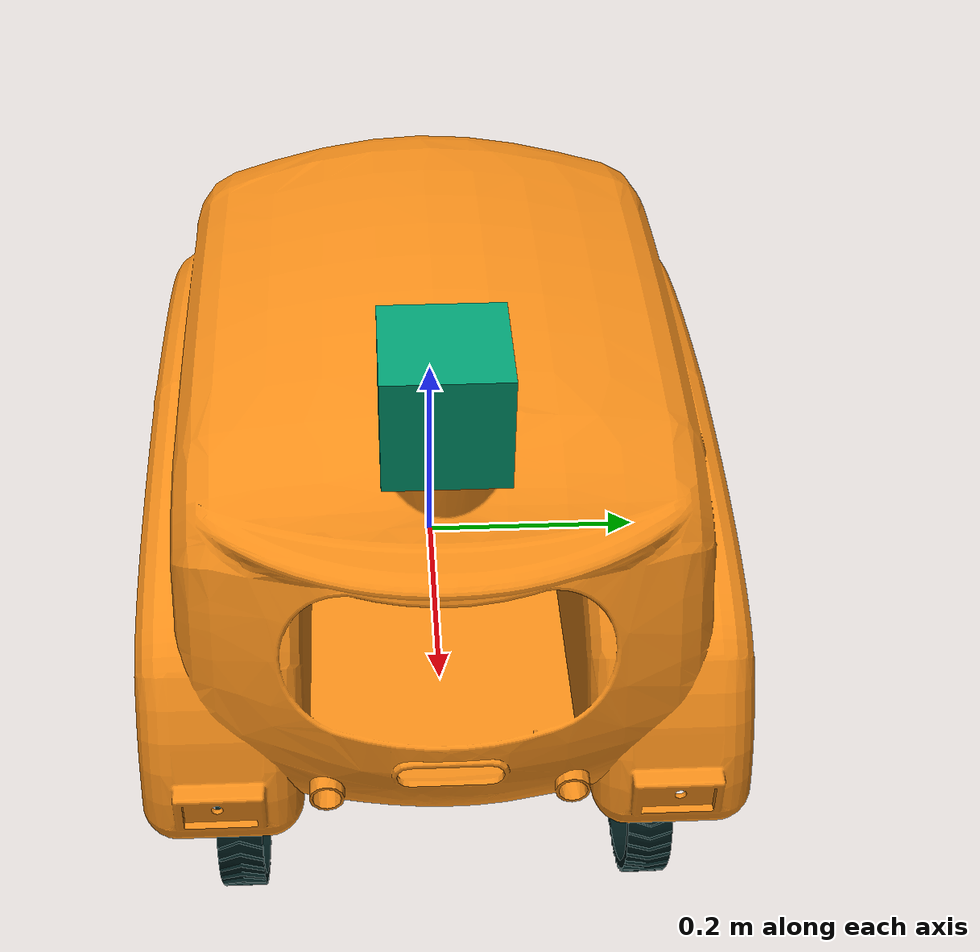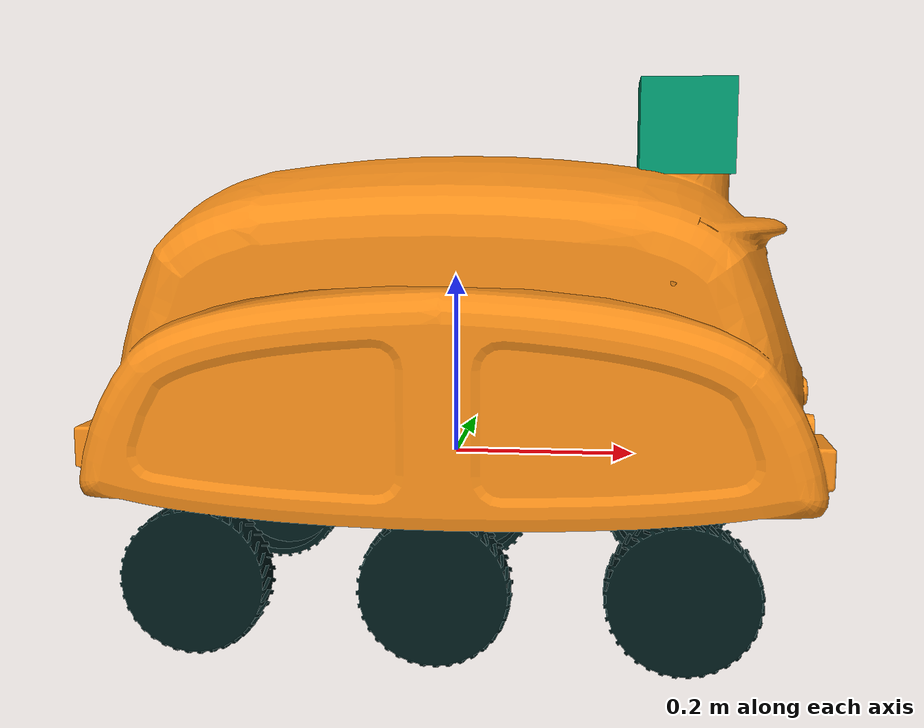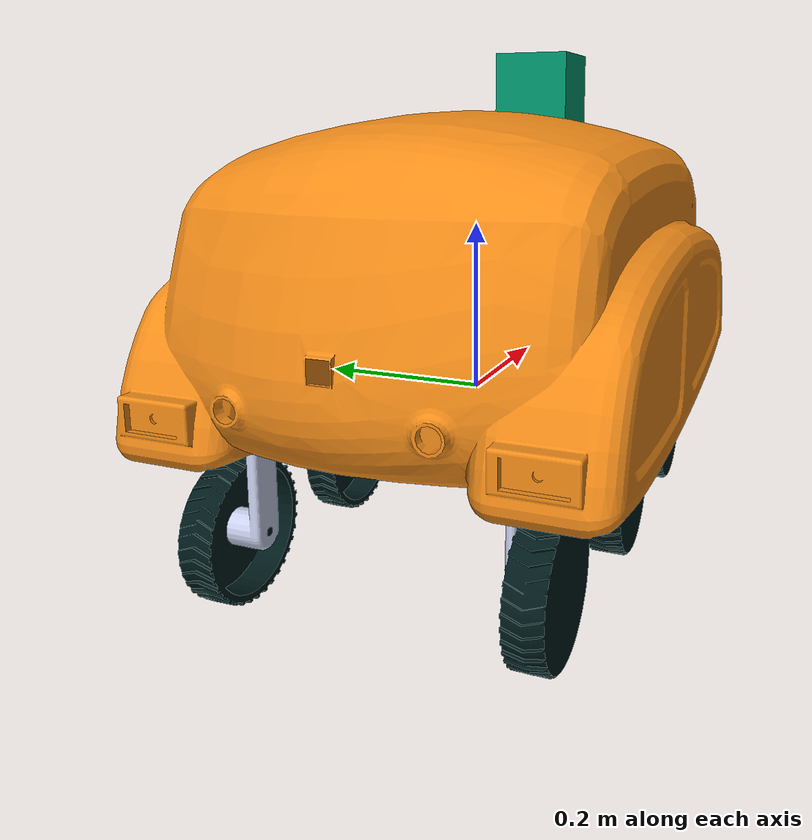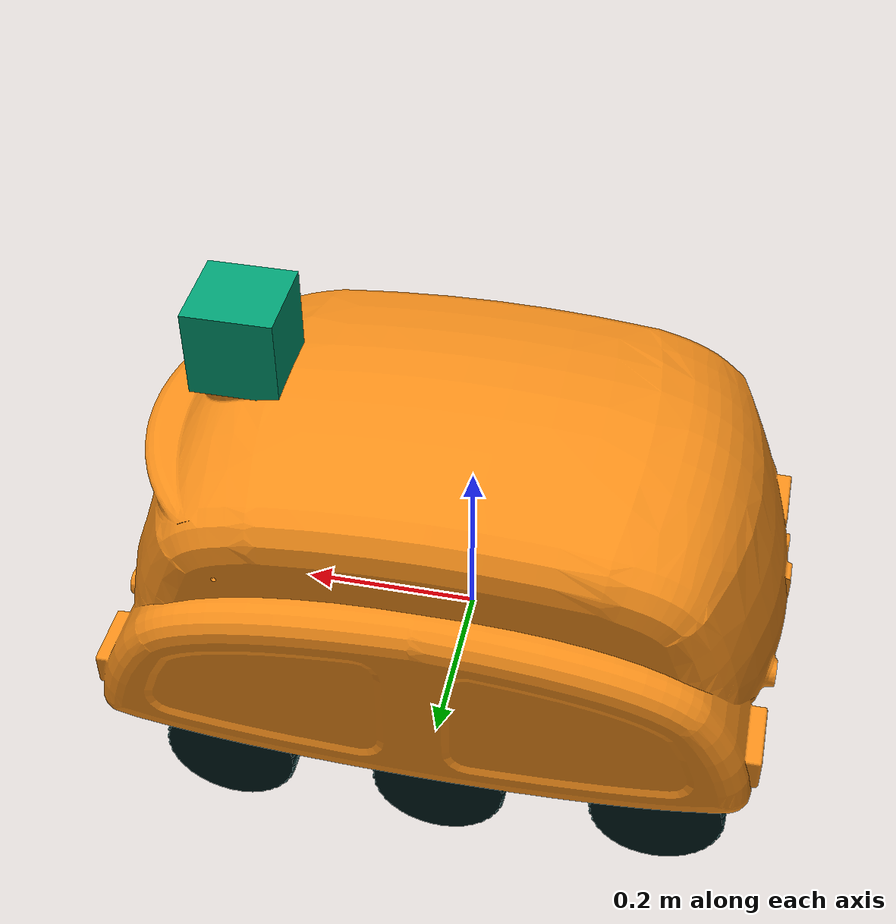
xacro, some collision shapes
<?xml version="1.0"?>

<robot name="beetlebot" xmlns:xacro="http://www.ros.org/wiki/xacro">

  <property name="PI" value="3.1415926535897931"/>

  <include filename="$(find beetlebot_description)/urdf/beetlebot.gazebo" />
  <include filename="$(find beetlebot_description)/urdf/materials.xacro" />
  <include filename="$(find beetlebot_description)/urdf/robot.xacro" />
  <include filename="$(find beetlebot_description)/urdf/sensor.xacro" />
  <link name="footprint" />

  <joint name="base_joint" type="fixed">
    <parent link="footprint"/>
    <child link="chassis"/>
  </joint>

  <link name="chassis">
    <collision>
      <origin xyz="0 0 0" rpy="0 0 0"/>
      <geometry>
        <mesh filename="$(find beetlebot_description)/meshes/base_link.dae" scale= "1 1 1"/>
      </geometry>
    </collision>

    <visual>
      <origin xyz="0 0 0" rpy="0 0 0"/>
      <geometry>
        <mesh filename="$(find beetlebot_description)/meshes/base_link.dae" scale= "1 1 1"/>
      </geometry>
    </visual>

    <inertial>
      <origin
        xyz="0 0 0"
        rpy="0 0 0" />
      <mass
        value="15.9977" />
      <inertia
        ixx="0.41015032534565"
        ixy="0"
        ixz="0"
        iyy="0.864297044074108"
        iyz="0"
        izz="1.03198412493106"  />
    </inertial>
  </link>

  <!-- Pivot_Link -->
  <!-- Bogie_left_Link -->
  <bogie ch="Bogie_left" pr="chassis" num="1"/>
  <bogie ch="Bogie_right" pr="chassis" num="-1"/>
  <!-- Frame_Link -->
  <sterring st="Frame_rear_left"  pr="chassis" ori="1" xyz_ori_joint="-0.2512 0.1746 0.04115" rpy_ori_joint="0 0 3.1416"/>
  <sterring st="Frame_front_left" pr="Bogie_left_Link" ori="1" xyz_ori_joint="0.0230242813783894 -0.161600997729002 -0.00600000000035122" rpy_ori_joint="1.57079632679489 0 -0.965625096203858"/>
  <sterring st="Frame_front_right" pr="Bogie_right_Link" ori="-1" xyz_ori_joint="0.0230242813783506 0.161600997729037 -0.00600000000014898" rpy_ori_joint="-1.57079632679501 0 0.965625096203942"/>
  <sterring st="Frame_rear_right" pr="chassis" ori="1" xyz_ori_joint="-0.251199999999987 -0.174600000000377 0.0411497179068749" rpy_ori_joint="0 0 -3.14159265358979"/>
  <!-- Wheel -->
  <wheel ch="Wheel_mid_left" pr="Bogie_left" ori="1" xyz_ori_joint="0.00282985115710119 0.125984094005667 0.00954399441673065" rpy_ori_joint="0 0 1.54833813158444"/>
  <wheel ch="Wheel_front_left" pr="Frame_front_left" ori="1" xyz_ori_joint="0 0.0165439944167309 -0.145999999999945" rpy_ori_joint="1.570796326795 0 3.14159265358969"/>
  <wheel ch="Wheel_rear_left" pr="Frame_rear_left" ori="1" xyz_ori_joint="0 -0.0165439944167308 -0.146" rpy_ori_joint="1.570796326795 0 0"/>
  <wheel ch="Wheel_mid_right" pr="Bogie_right" ori="1" xyz_ori_joint="0.00282985115709367 -0.125984094005641 0.00954399441663158" rpy_ori_joint="0 0 -1.5483381315845"/>
  <wheel ch="Wheel_front_right" pr="Frame_front_right" ori="1" xyz_ori_joint="0 -0.0165439944167298 -0.145999999999915" rpy_ori_joint="-1.5707963267949 0 3.14159265358969"/>
  <wheel ch="Wheel_rear_right" pr="Frame_rear_right" ori="1" xyz_ori_joint="0 0.0165439944167314 -0.145999999999968" rpy_ori_joint="-1.57079632679489 0 0"/>

  <!-- camera front -->
  <sensor_camera name="camera_front" ori_xyz="0.383 0 0.080" ori_rpy="0 0 0" />
  <sensor_camera name="camera_rear" ori_xyz="-0.361 0 0.113" ori_rpy="0 0 3.14" />
  <sensor_camera name="camera_left" ori_xyz="0.010 0.220 0.228" ori_rpy="0 0 1.57" />
  <sensor_camera name="camera_right" ori_xyz="0.010 -0.220 0.228" ori_rpy="0 0 -1.57" />

  <Hokuyo_laser/>
  <IMU/>
</robot>

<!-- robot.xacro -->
<robot>

<!-- ****************************************sterring******************************************** -->
    <macro name="sterring" params="st pr ori xyz_ori_joint rpy_ori_joint" >

      <link
        name="${st}_Link">
        <inertial>
          <origin
            xyz="${ori*-0.000100729773299224} ${ori*-0.022707717448498} -0.0946007357290982"
            rpy="0 0 0" />
          <mass
            value="1.110802029012366" />
          <inertia
            ixx="0.00032454182493778"
            ixy="0"
            ixz="0"
            iyy="0.000313625372879202"
            iyz="0"
            izz="3.60621586312286E-05" />
        </inertial>
        <visual>
          <origin
            xyz="0 0 0"
            rpy="0 0 0" />
          <geometry>
            <mesh
              filename="$(find beetlebot_description)/meshes/${st}_Link.dae" />
          </geometry>
          <material
            name="">
            <color
              rgba="0.792156862745098 0.819607843137255 0.933333333333333 1" />
          </material>
        </visual>
        <collision>
          <origin
            xyz="0 0 0"
            rpy="0 0 0" />
          <geometry>
            <mesh
              filename="$(find beetlebot_description)/meshes/${st}_Link.dae" />
          </geometry>
        </collision>
      </link>

      <joint
        name="${st}_joint" type="revolute">
        <origin
          xyz="${xyz_ori_joint}"
          rpy="${rpy_ori_joint}" />
        <parent link="${pr}" />
        <child link="${st}_Link" />
        <axis xyz="0 0 1" />
        <limit lower="-1.0472" upper="1.0472" effort="1.0472" velocity="10.0"/>

      </joint>

      <transmission name="${st}_trans">
        <type>transmission_interface/SimpleTransmission</type>
        <joint name="${st}_joint">
          <hardwareInterface>hardware_interface/EffortJointInterface</hardwareInterface>
        </joint>
        <actuator name="${st}_Motor">
          <hardwareInterface>hardware_interface/EffortJointInterface</hardwareInterface>
          <mechanicalReduction>1</mechanicalReduction>
        </actuator>
      </transmission>

      <gazebo reference="${st}_Link">
        <mu1>0.3</mu1>
        <mu2>0.3</mu2>
        <self_collide>1</self_collide>
      </gazebo>
    </macro>

<!-- ****************************************bogie*********************************************** -->
    <macro name="bogie" params="ch pr num">
      <link
        name="${ch}_Link">
        <inertial>
          <origin
            xyz="-0.000163032997340468 ${num*-0.0332177038859611} -0.0358157719860211"
            rpy="0 0 0" />
          <mass
            value="0.298477821339867" />
          <inertia
            ixx="0.00305008410077296"
            ixy="0"
            ixz="0"
            iyy="0.000246965375315985"
            iyz="0"
            izz="0.00318546306770007" />
        </inertial>
        <visual>
          <origin
            xyz="0 0 0"
            rpy="0 0 0" />
          <geometry>
            <mesh
              filename="$(find beetlebot_description)/meshes/${ch}_Link.dae" />
          </geometry>
          <material
            name="">
            <color
              rgba="0.792156862745098 0.819607843137255 0.933333333333333 1" />
          </material>
        </visual>
        <collision>
          <origin
            xyz="0 0 0"
            rpy="0 0 0" />
          <geometry>
            <mesh
              filename="$(find beetlebot_description)/meshes/${ch}_Link.dae" />
          </geometry>
        </collision>
      </link>

      <joint
        name="${ch}_joint"
        type="revolute">
        <origin
          xyz="0.1019 ${num*0.1916} -0.030305"
          rpy="${num*-1.5708} 0.96563 0" />
        <parent
          link="chassis" />
        <child
          link="${ch}_Link" />
        <axis
          xyz="0 0 1" />
        <safety_controller
          k_velocity="0" />
        <joint_properties damping="0.0" friction="0.0"/>
        <limit lower="-0.4" upper="0.4" effort="10000.0" velocity="10.0"/>
      </joint>

      <transmission name="${ch}_trans">
        <type>transmission_interface/SimpleTransmission</type>
        <joint name="${ch}_joint">
          <hardwareInterface>hardware_interface/EffortJointInterface</hardwareInterface>
        </joint>
        <actuator name="${ch}_Motor">
          <hardwareInterface>hardware_interface/EffortJointInterface</hardwareInterface>
          <mechanicalReduction>1</mechanicalReduction>
        </actuator>
      </transmission>

      <gazebo reference="${ch}_Link">
        <mu1>0.3</mu1>
        <mu2>0.3</mu2>
        <self_collide>1</self_collide>
      </gazebo>

    </macro>

<!-- ****************************************wheel*********************************************** -->
    <macro name="wheel" params="ch pr ori xyz_ori_joint rpy_ori_joint">
      <link
        name="${ch}_Link">
        <inertial>
          <origin
            xyz="0 0  -0.0137009284721737"
            rpy="0 0 0" />
          <mass
            value="1.0" />
          <!-- Inertial for wheel (cylinder): xx = m*(3*r*r+h*h)/12 ; yy= m*(3*r*r+h*h)/12; zz= m*r*r/2 -->
          <inertia
            ixx="0.0015395"
            ixy="0"
            ixz="0"
            iyy="0.0015395"
            iyz="0"
            izz="0.0028125" />
        </inertial>
        <visual>
          <origin
            xyz="0 0 0"
            rpy="0 0 0" />
          <geometry>
            <mesh
              filename="$(find beetlebot_description)/meshes/${ch}_Link.dae" />
          </geometry>
          <material
            name="">
            <color
              rgba="0.0 0.1 0.1 1" />
          </material>
        </visual>
        <collision>
          <origin
            xyz="0 0 0"
            rpy="0 0 0" />
          <geometry>
            <cylinder length="0.04" radius="0.075"/>
          </geometry>
        </collision>
      </link>

      <joint
        name="${ch}_joint"
        type="continuous">
        <origin
          xyz="${xyz_ori_joint}"
          rpy="${rpy_ori_joint}" />
        <parent link="${pr}_Link" />
        <child link="${ch}_Link" />
        <axis xyz="0 0 1" />
        <limit effort="100.0" velocity="100.0"/>
        <safety_controller k_velocity="10" />
        <joint_properties damping="10.0" friction="50.0"/>
      </joint>

      <transmission name="${ch}_trans">
        <type>transmission_interface/SimpleTransmission</type>
        <joint name="${ch}_joint">
          <hardwareInterface>hardware_interface/EffortJointInterface</hardwareInterface>
        </joint>
        <actuator name="${ch}_Motor">
          <hardwareInterface>hardware_interface/EffortJointInterface</hardwareInterface>
          <mechanicalReduction>1</mechanicalReduction>
        </actuator>
      </transmission>

      <gazebo reference="${ch}_Link">
        <mu1 value="1.0"/>
        <mu2 value="1.0"/>
        <kp  value="10000000.0" />
        <kd>100.0</kd>
        <minDepth>0.001</minDepth>
        <maxVel>1.0</maxVel>
        <material>Gazebo/Black</material>
        <self_collide>1</self_collide>
        <turnGravityOff>false</turnGravityOff>
      </gazebo>
    </macro>

</robot>

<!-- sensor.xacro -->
<robot>
    <macro name="sensor_camera" params="name ori_xyz ori_rpy">
        <!-- camera_link -->
        <link name="${name}_link">
            <collision>
                <origin xyz="0.005 0.011 0.013" rpy="0 0 0"/>
                <geometry>
                <box size="0.015 0.030 0.027"/>
                </geometry>
            </collision>
        </link>
        <joint name="${name}_joint" type="fixed">
            <origin xyz="${ori_xyz}" rpy="${ori_rpy}"/>
            <parent link="chassis"/>
            <child link="${name}_link"/>
        </joint>
        <!-- camera_frame -->
        <link name="${name}_frame"/>
        <joint name="${name}_frame_joint" type="fixed">
            <origin xyz="0.003 0.011 0.009" rpy="0 0 0"/>
            <parent link="${name}_link"/>
            <child link="${name}_frame"/>
        </joint>
        <!-- camera_optical -->
        <link name="${name}_optical_frame"/>
        <joint name="${name}_optical_joint" type="fixed">
            <origin xyz="0 0 0" rpy="-1.57 0 -1.57"/>
            <parent link="${name}_frame"/>
            <child link="${name}_optical_frame"/>
        </joint>

        <gazebo reference="${name}_frame">
            <sensor type="depth" name="Pi Camera">
                <always_on>true</always_on>
                <visualize>false</visualize>
                <camera>
                    <horizontal_fov>1.085595</horizontal_fov>
                    <image>
                        <width>960</width>
                        <height>640</height>
                        <format>R8G8B8</format>
                    </image>
                    <clip>
                        <near>0.03</near>
                        <far>100</far>
                    </clip>
                </camera>
                <plugin name="camera_controller" filename="libgazebo_ros_openni_kinect.so">
                    <!-- libgazebo_ros_openni_kinect -->
                    <alwaysOn>true</alwaysOn>
                    <updateRate>30.0</updateRate>
                    <cameraName>camera</cameraName>
                    <frameName>${name}_optical_frame</frameName>
                    <imageTopicName>${name}/image_raw</imageTopicName>
                    <cameraInfoTopicName>${name}/camera_info</cameraInfoTopicName>

                    <depthImageTopicName>${name}/image_depth</depthImageTopicName>
                    <depthImageInfoTopicName>${name}/camera_depth_info</depthImageInfoTopicName>
                    <pointCloudTopicName>${name}/image_depth/points</pointCloudTopicName>

                    <pointCloudCutoff>0.05</pointCloudCutoff>
                    <pointCloudCutoffMax>10.0</pointCloudCutoffMax>
                    <rangeMax>30.0</rangeMax>

                    <hackBaseline>0.07</hackBaseline>
                    <distortionK1>0.0</distortionK1>
                    <distortionK2>0.0</distortionK2>
                    <distortionK3>0.0</distortionK3>
                    <distortionT1>0.0</distortionT1>
                    <distortionT2>0.0</distortionT2>
                </plugin>
            </sensor>
        </gazebo>
    </macro>
    <!-- Hokuyo_laser -->
    <macro name="Hokuyo_laser" params="">
        <link name="hokuyo_link">
            <collision>
                <origin xyz="0 0 0" rpy="0 0 0"/>
                <geometry>
                <box size="0.1 0.1 0.1"/>
                </geometry>
            </collision>

            <visual>
                <origin xyz="0 0 0" rpy="0 0 0"/>
                <geometry>
                <mesh filename="$(find beetlebot_description)/meshes/hokuyo.dae"/>
                </geometry>
            </visual>

            <inertial>
                <mass value="1e-5" />
                <origin xyz="0 0 0" rpy="0 0 0"/>
                <inertia ixx="1e-6" ixy="0" ixz="0" iyy="1e-6" iyz="0" izz="1e-6" />
            </inertial>
        </link>

        <joint name="hokuyo_joint" type="fixed">
            <axis xyz="0 1 0" />
            <origin xyz="0.250 0.0 0.362" rpy="0 0 0"/>
            <parent link="chassis"/>
            <child link="hokuyo_link"/>
        </joint>
        <gazebo reference="hokuyo_link">
            <sensor type="ray" name="head_hokuyo_sensor">
                <pose>0 0 0 0 0 0</pose>
                <visualize>true</visualize>
                <update_rate>30</update_rate>
                <ray>
                <scan>

                    <horizontal>
                    <samples>0</samples>
                    <resolution>1.0</resolution>
                    <min_angle>1.57</min_angle>
                    <max_angle>-1.57</max_angle>
                    </horizontal>

                </scan>
                <range>
                    <min>0.1</min>
                    <max>25.0</max>
                    <resolution>0.01</resolution>
                </range>
                <noise>
                    <type>gaussian</type>
                    <mean>0.0</mean>
                    <stddev>0.01</stddev>
                </noise>
                </ray>
                <plugin name="gazebo_ros_head_hokuyo_controller" filename="libgazebo_ros_laser.so">
                <topicName>/husky/laser/scan</topicName>
                <frameName>hokuyo_link</frameName>
                </plugin>
            </sensor>
        </gazebo>

    </macro>

    <!-- IMU -->
    <macro name="IMU" params="">
        <link name="imu_link">
            <inertial>
                <mass value="0.001"/>
                <origin rpy="0 0 0" xyz="0 0 0"/>
                <inertia ixx="0.0001" ixy="0" ixz="0" iyy="0.000001" iyz="0" izz="0.0001"/>
            </inertial>
            <visual>
                <origin rpy="0 0 0" xyz="0 0 0"/>
                <geometry>
                <box size="0.001 0.001 0.001"/>
                </geometry>
            </visual>
            <collision>
                <origin rpy="0 0 0" xyz="0 0 0"/>
                <geometry>
                <box size=".001 .001 .001"/>
                </geometry>
            </collision>
        </link>
        <joint name="imu_joint" type="fixed">
            <axis xyz="1 0 0"/>
            <origin xyz="0 0 0.19"/>
            <parent link="chassis"/>
            <child link="imu_link"/>
        </joint>
        <gazebo>
            <plugin name="imu_controller" filename="libgazebo_ros_imu.so">
                <alwaysOn>true</alwaysOn>
                <updateRate>50.0</updateRate>
                <bodyName>imu_link</bodyName>
                <topicName>imu_data</topicName>
                <gaussianNoise>2.89e-08</gaussianNoise>
                <xyzOffsets>0 0 0</xyzOffsets>
                <rpyOffsets>0 0 0</rpyOffsets>
            </plugin>
        </gazebo>
    </macro>
</robot>
